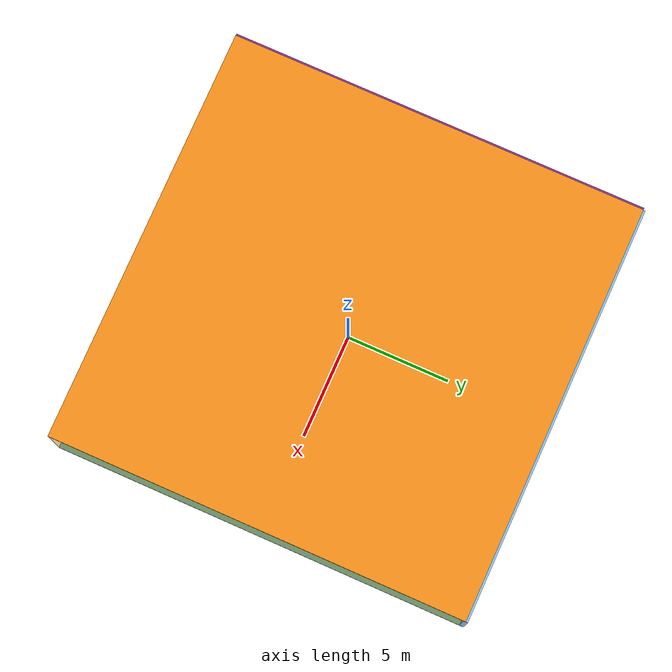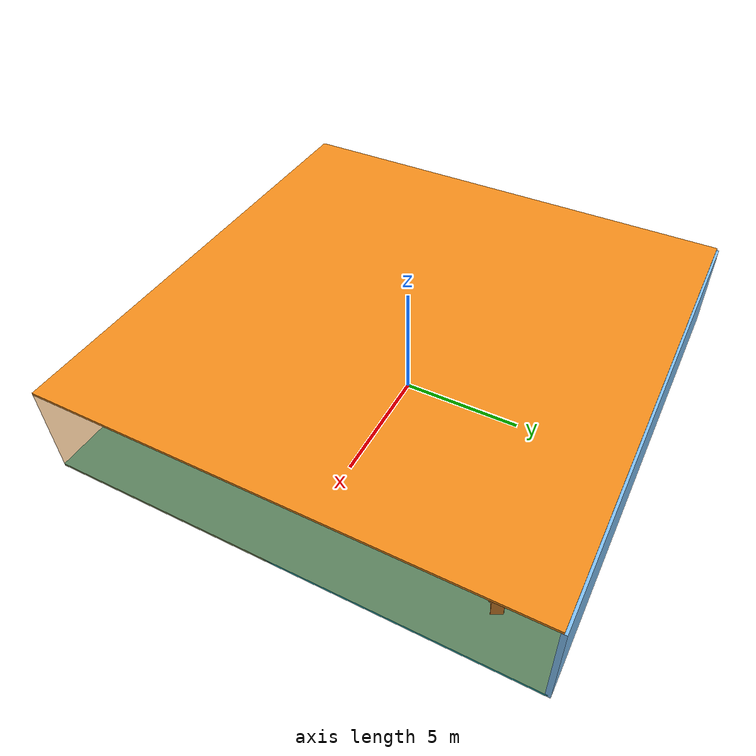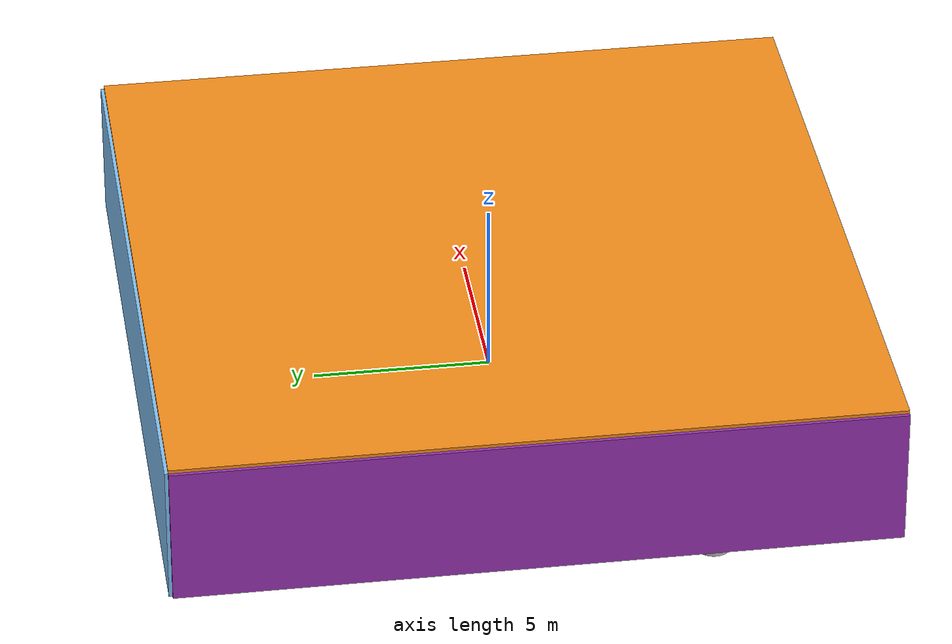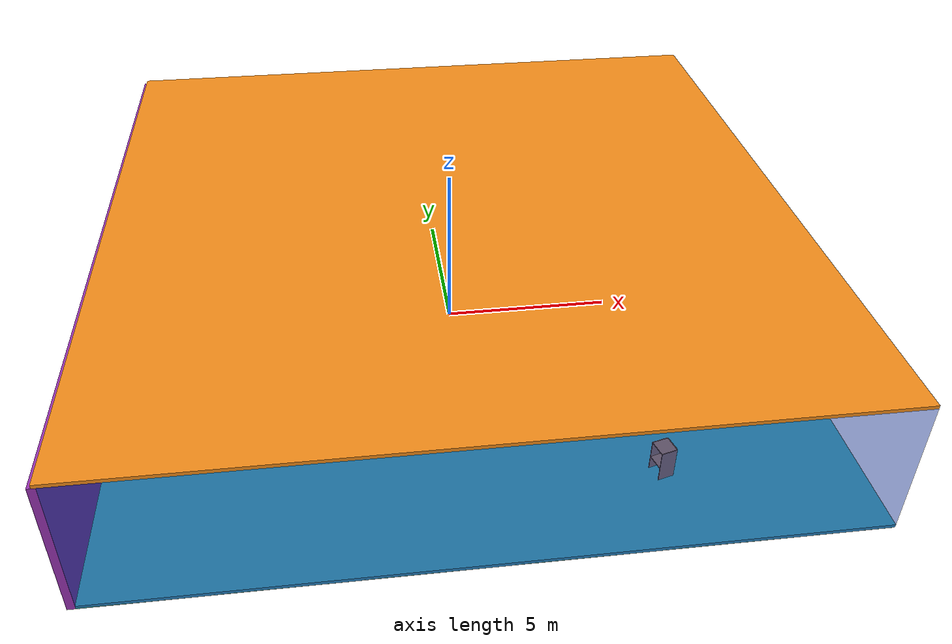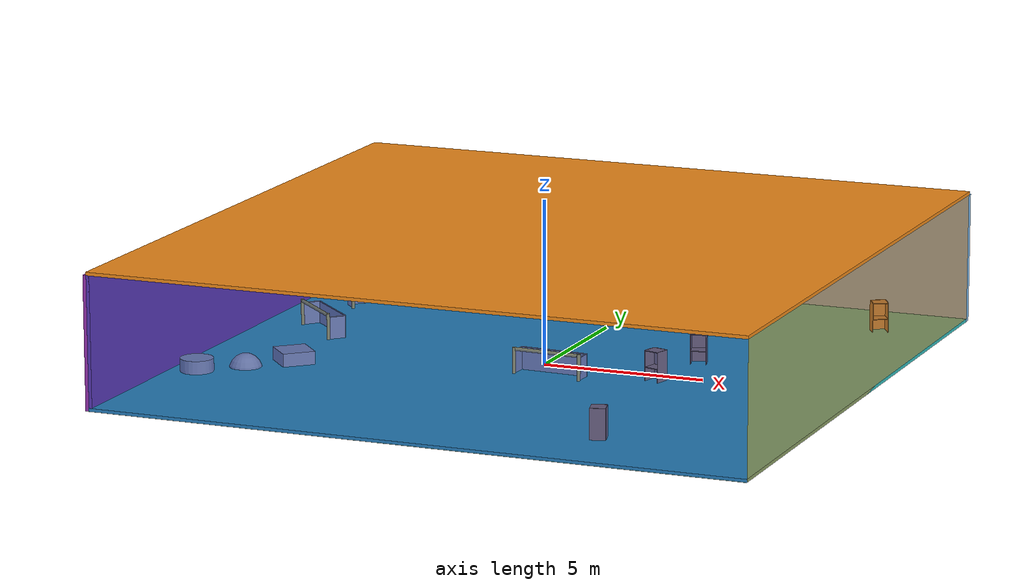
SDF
<sdf version="1.4">
 <world name="default">
  <physics type="ode">
   <max_step_size>0.001</max_step_size>
   <real_time_factor>1</real_time_factor>
   <real_time_update_rate>1000</real_time_update_rate>
   <gravity>0 0 -9.8</gravity>
  </physics>
  <scene><ambient>0.4 0.4 0.4 1</ambient><background>0.7 0.7 0.7 1</background><shadows>1</shadows></scene>
  <model name="Surrounding">
   <static>1</static>
   <link name="Ceiling">
    <collision name="Ceiling_Collision"><geometry><box><size>20 20 0.1</size></box></geometry></collision>
    <visual name="Ceiling_Visual">
     <geometry><box><size>20 20 0.1</size></box></geometry>
     <material>
      <script><uri>file://media/materials/scripts/gazebo.material</uri><name>Gazebo/Orange</name></script>
     </material>
    </visual>
    <pose>0 0 4.05 0 0 0</pose>
   </link>
   <link name="Wall_South">
    <collision name="Wall_South_Collision">
     <geometry><box><size>20 0 4</size></box></geometry>
     <pose>0 0 2 0 -0 0</pose>
    </collision>
    <visual name="Wall_South_Visual">
     <pose>0 0 2 0 -0 0</pose>
     <geometry><box><size>20 0 4</size></box></geometry>
     <material>
      <script><uri>file://media/materials/scripts/gazebo.material</uri><name>Gazebo/BlueTransparent</name></script>
     </material>
    </visual>
    <velocity_decay><linear>0</linear><angular>0</angular></velocity_decay>
    <pose>0 -10 0 0 -0 0</pose>
   </link>
   <link name="Wall_East">
    <collision name="Wall_21_Collision">
     <geometry><box><size>20 0 4</size></box></geometry>
     <pose>0 0 2 0 -0 0</pose>
    </collision>
    <visual name="Wall_21_Visual">
     <pose>0 0 2 0 -0 0</pose>
     <geometry><box><size>20 0 4</size></box></geometry>
     <material>
      <script>
       <uri>file://media/materials/scripts/gazebo.material</uri>
       <name>Gazebo/OrangeTransparent</name>
      </script>
     </material>
    </visual>
    <velocity_decay><linear>0</linear><angular>0</angular></velocity_decay>
    <pose>10 0 0 0 -0 1.5708</pose>
   </link>
   <link name="Wall_North">
    <collision name="Wall_22_Collision">
     <geometry><box><size>20 0.2 4</size></box></geometry>
     <pose>0 0 2 0 -0 0</pose>
    </collision>
    <visual name="Wall_22_Visual">
     <pose>0 0 2 0 -0 0</pose>
     <geometry><box><size>20 0.2 4</size></box></geometry>
     <material>
      <script><uri>file://media/materials/scripts/gazebo.material</uri><name>Gazebo/SkyBlue</name></script>
     </material>
    </visual>
    <velocity_decay><linear>0</linear><angular>0</angular></velocity_decay>
    <pose>0 10 0 0 -0 0</pose>
   </link>
   <link name="Wall_West">
    <collision name="Wall_23_Collision">
     <geometry><box><size>20 0.2 4</size></box></geometry>
     <pose>0 0 2 0 -0 0</pose>
    </collision>
    <visual name="Wall_23_Visual">
     <pose>0 0 2 0 -0 0</pose>
     <geometry><box><size>20 0.2 4</size></box></geometry>
     <material>
      <script><uri>file://media/materials/scripts/gazebo.material</uri><name>Gazebo/PurpleGlow</name></script>
     </material>
    </visual>
    <velocity_decay><linear>0</linear><angular>0</angular></velocity_decay>
    <pose>-10 0 0 0 0 -1.5708</pose>
   </link>
   <link name="Ground_link">
    <collision name="collision">
     <pose>0 0 .05 0 -0 0</pose>
     <geometry><box><size>20 20 0.1</size></box></geometry>
    </collision>
    <visual name="visual">
     <pose>0 0 .05 0 -0 0</pose>
     <geometry><box><size>20 20 0.1</size></box></geometry>
     <material>
      <script><uri>file://media/materials/scripts/gazebo.material</uri><name>Gazebo/Turquoise</name></script>
     </material>
    </visual>
   </link>
   <static>1</static>
  </model>
  <spherical_coordinates>
   <surface_model>EARTH_WGS84</surface_model>
   <latitude_deg>0</latitude_deg>
   <longitude_deg>0</longitude_deg>
   <elevation>0</elevation>
   <heading_deg>0</heading_deg>
  </spherical_coordinates>
  <light name="lightball_0" type="diffuse">
   <diffuse>0.8 0.8 0.8 1</diffuse>
   <specular>0.2 0.2 0.2 1</specular>
   <attenuation>
    <range>100</range>
    <constant>0.7</constant>
    <linear>0.01</linear>
    <quadratic>0.001</quadratic>
   </attenuation>
   <direction>-0.5 0.1 -0.9</direction>
   <pose>0.59297669672 -6.55424214673 3.12854594563 0 0 0</pose>
  </light>
  <light name="lightball_1" type="diffuse">
   <diffuse>0.8 0.8 0.8 1</diffuse>
   <specular>0.2 0.2 0.2 1</specular>
   <attenuation>
    <range>100</range>
    <constant>0.7</constant>
    <linear>0.01</linear>
    <quadratic>0.001</quadratic>
   </attenuation>
   <direction>-0.5 0.1 -0.9</direction>
   <pose>6.57637825441 2.26639070705 1.68032225491 0 0 0</pose>
  </light>
  <light name="lightball_2" type="diffuse">
   <diffuse>0.8 0.8 0.8 1</diffuse>
   <specular>0.2 0.2 0.2 1</specular>
   <attenuation>
    <range>100</range>
    <constant>0.7</constant>
    <linear>0.01</linear>
    <quadratic>0.001</quadratic>
   </attenuation>
   <direction>-0.5 0.1 -0.9</direction>
   <pose>-1.21870035257 1.83995364707 2.04644697083 0 0 0</pose>
  </light>
  <light name="lightball_3" type="diffuse">
   <diffuse>0.8 0.8 0.8 1</diffuse>
   <specular>0.2 0.2 0.2 1</specular>
   <attenuation>
    <range>100</range>
    <constant>0.7</constant>
    <linear>0.01</linear>
    <quadratic>0.001</quadratic>
   </attenuation>
   <direction>-0.5 0.1 -0.9</direction>
   <pose>-4.56425550043 3.8916878239 2.36060377463 0 0 0</pose>
  </light>
  <light name="lightball_4" type="diffuse">
   <diffuse>0.8 0.8 0.8 1</diffuse>
   <specular>0.2 0.2 0.2 1</specular>
   <attenuation>
    <range>100</range>
    <constant>0.7</constant>
    <linear>0.01</linear>
    <quadratic>0.001</quadratic>
   </attenuation>
   <direction>-0.5 0.1 -0.9</direction>
   <pose>5.65926733959 3.72091732691 2.05454300722 0 0 0</pose>
  </light>
  <light name="lightball_5" type="diffuse">
   <diffuse>0.8 0.8 0.8 1</diffuse>
   <specular>0.2 0.2 0.2 1</specular>
   <attenuation>
    <range>100</range>
    <constant>0.7</constant>
    <linear>0.01</linear>
    <quadratic>0.001</quadratic>
   </attenuation>
   <direction>-0.5 0.1 -0.9</direction>
   <pose>8.70367250144 -3.57854843438 2.04870073328 0 0 0</pose>
  </light>
  <light name="lightball_6" type="diffuse">
   <diffuse>0.8 0.8 0.8 1</diffuse>
   <specular>0.2 0.2 0.2 1</specular>
   <attenuation>
    <range>100</range>
    <constant>0.7</constant>
    <linear>0.01</linear>
    <quadratic>0.001</quadratic>
   </attenuation>
   <direction>-0.5 0.1 -0.9</direction>
   <pose>4.5590538757 -7.27926511243 1.38400530344 0 0 0</pose>
  </light>
  <light name="lightball_7" type="diffuse">
   <diffuse>0.8 0.8 0.8 1</diffuse>
   <specular>0.2 0.2 0.2 1</specular>
   <attenuation>
    <range>100</range>
    <constant>0.7</constant>
    <linear>0.01</linear>
    <quadratic>0.001</quadratic>
   </attenuation>
   <direction>-0.5 0.1 -0.9</direction>
   <pose>-8.53488096117 7.48170592948 3.16274159851 0 0 0</pose>
  </light>
  <light name="lightball_8" type="diffuse">
   <diffuse>0.8 0.8 0.8 1</diffuse>
   <specular>0.2 0.2 0.2 1</specular>
   <attenuation>
    <range>100</range>
    <constant>0.7</constant>
    <linear>0.01</linear>
    <quadratic>0.001</quadratic>
   </attenuation>
   <direction>-0.5 0.1 -0.9</direction>
   <pose>7.3495875702 -1.03958036669 3.36662632179 0 0 0</pose>
  </light>
  <light name="lightball_9" type="diffuse">
   <diffuse>0.8 0.8 0.8 1</diffuse>
   <specular>0.2 0.2 0.2 1</specular>
   <attenuation>
    <range>100</range>
    <constant>0.7</constant>
    <linear>0.01</linear>
    <quadratic>0.001</quadratic>
   </attenuation>
   <direction>-0.5 0.1 -0.9</direction>
   <pose>1.33405554732 -6.25354098939 2.49001698796 0 0 0</pose>
  </light>
  <light name="lightball_10" type="diffuse">
   <diffuse>0.8 0.8 0.8 1</diffuse>
   <specular>0.2 0.2 0.2 1</specular>
   <attenuation>
    <range>100</range>
    <constant>0.7</constant>
    <linear>0.01</linear>
    <quadratic>0.001</quadratic>
   </attenuation>
   <direction>-0.5 0.1 -0.9</direction>
   <pose>9.81882736994 1.31487088537 3.89896253152 0 0 0</pose>
  </light>
  <include>
   <uri>model://textured_shapes</uri>
   <pose>-7.97191183114 -3.88620928787 0 0 0 2.31868579736</pose>
  </include>
  <include>
   <uri>model://robocup_3Dsim_goal</uri>
   <pose>-7.8687361849 0.787046053413 0 0 0 0.813984880642</pose>
  </include>
  <include>
   <uri>model://robocup_3Dsim_goal</uri>
   <pose>-7.29408707245 4.72598615485 0 0 0 2.30724836453</pose>
  </include>
  <include>
   <uri>model://robocup_3Dsim_goal</uri>
   <pose>0.750420741173 -1.71952240817 0 0 0 1.51865632543</pose>
  </include>
  <include><uri>model://cabinet</uri><pose>4.70076481658 -7.54275489015 0 0 0 0.258251633722</pose></include>
  <include><uri>model://cabinet</uri><pose>3.86804065654 -0.874455697848 0 0 0 1.27460015303</pose></include>
  <include><uri>model://cabinet</uri><pose>4.30491274156 1.56568845003 0 0 0 1.83867821134</pose></include>
  <include><uri>model://cabinet</uri><pose>7.98914181243 7.41278148049 0 0 0 2.08307437728</pose></include>
 </world>
</sdf>

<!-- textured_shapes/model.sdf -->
<sdf version="1.6">
  <model name="textured_shapes">
    <pose>0 0 0.5 0 0 0</pose>
    <link name="box">
      <pose>0 -1.5 0 0 0 0</pose>
      <collision name="collision">
        <geometry>
          <box>
            <size>1 1 1</size>
          </box>
        </geometry>
      </collision>
      <visual name="visual">
        <geometry>
          <box>
            <size>1 1 1</size>
          </box>
        </geometry>
        <material>
          <script>
            <uri>model://../model_source/models/textured_shapes/materials/scripts</uri>
            <uri>model://../model_source/models/textured_shapes/materials/textures</uri>
            <name>TexturedShape/Squares</name>
          </script>
        </material>
      </visual>
    </link>
    <link name="sphere">
      <collision name="collision">
        <geometry>
          <sphere>
            <radius>0.5</radius>
          </sphere>
        </geometry>
      </collision>
      <visual name="visual">
        <geometry>
          <sphere>
            <radius>0.5</radius>
          </sphere>
        </geometry>
        <material>
          <script>
            <uri>model://../model_source/models/textured_shapes/materials/scripts</uri>
            <uri>model://../model_source/models/textured_shapes/materials/textures</uri>
            <name>TexturedShape/Squares</name>
          </script>
        </material>
      </visual>
    </link>
    <link name="cylinder">
      <pose>0 1.5 0 0 0 0</pose>
      <collision name="collision">
        <geometry>
          <cylinder>
            <radius>0.5</radius>
            <length>1</length>
          </cylinder>
        </geometry>
      </collision>
      <visual name="visual">
        <geometry>
          <cylinder>
            <radius>0.5</radius>
            <length>1</length>
          </cylinder>
        </geometry>
        <material>
          <script>
            <uri>model://../model_source/models/textured_shapes/materials/scripts</uri>
            <uri>model://../model_source/models/textured_shapes/materials/textures</uri>
            <name>TexturedShape/Squares</name>
          </script>
        </material>
      </visual>
    </link>
  </model>
</sdf>

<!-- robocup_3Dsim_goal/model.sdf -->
<sdf version="1.5">
  <model name="robocup_3d_goal">
    <static>true</static>
    <link name="left_post">
      <pose>0 1.05 0.45 0 0 0</pose>
      <collision name="collision">
        <geometry>
          <cylinder>
            <radius>0.05</radius>
            <length>0.9</length>
          </cylinder>
        </geometry>
      </collision>
      <visual name="visual">
        <geometry>
          <cylinder>
            <radius>0.05</radius>
            <length>0.9</length>
          </cylinder>
        </geometry>
        <material>
          <script>
            <uri>file://media/materials/scripts/gazebo.material</uri>
            <name>Gazebo/ZincYellow</name>
          </script>
        </material>
      </visual>
    </link>
    <link name="left_support_horiz_lower">
      <pose>0.30 1.05 0.01 0 0 0</pose>
      <collision name="collision">
        <geometry>
          <box>
            <size>0.50 0.02 0.02</size>
          </box>
        </geometry>
      </collision>
      <visual name="visual">
        <geometry>
          <box>
            <size>0.50 0.02 0.02</size>
          </box>
        </geometry>
        <material>
          <script>
            <uri>file://media/materials/scripts/gazebo.material</uri>
            <name>Gazebo/White</name>
          </script>
        </material>
      </visual>
    </link>
    <link name="left_support_horiz_upper">
      <pose>0.30 1.05 0.79 0 0 0</pose>
      <collision name="collision">
        <geometry>
          <box>
            <size>0.50 0.02 0.02</size>
          </box>
        </geometry>
      </collision>
      <visual name="visual">
        <geometry>
          <box>
            <size>0.50 0.02 0.02</size>
          </box>
        </geometry>
        <material>
          <script>
            <uri>file://media/materials/scripts/gazebo.material</uri>
            <name>Gazebo/White</name>
          </script>
        </material>
      </visual>
    </link>
    <link name="left_support_vertical">
      <pose>0.56 1.05 0.4 0 1.5708 0</pose>
      <collision name="collision">
        <geometry>
          <box>
            <size>0.80 0.02 0.02</size>
          </box>
        </geometry>
      </collision>
      <visual name="visual">
        <geometry>
          <box>
            <size>0.80 0.02 0.02</size>
          </box>
        </geometry>
        <material>
          <script>
            <uri>file://media/materials/scripts/gazebo.material</uri>
            <name>Gazebo/White</name>
          </script>
        </material>
      </visual>
    </link>
    <link name="right_support_horiz_lower">
      <pose>0.30 -1.05 0.01 0 0 0</pose>
      <collision name="collision">
        <geometry>
          <box>
            <size>0.50 0.02 0.02</size>
          </box>
        </geometry>
      </collision>
      <visual name="visual">
        <geometry>
          <box>
            <size>0.50 0.02 0.02</size>
          </box>
        </geometry>
        <material>
          <script>
            <uri>file://media/materials/scripts/gazebo.material</uri>
            <name>Gazebo/White</name>
          </script>
        </material>
      </visual>
    </link>
    <link name="right_support_horiz_upper">
      <pose>0.30 -1.05 0.79 0 0 0</pose>
      <collision name="collision">
        <geometry>
          <box>
            <size>0.50 0.02 0.02</size>
          </box>
        </geometry>
      </collision>
      <visual name="visual">
        <geometry>
          <box>
            <size>0.50 0.02 0.02</size>
          </box>
        </geometry>
        <material>
          <script>
            <uri>file://media/materials/scripts/gazebo.material</uri>
            <name>Gazebo/White</name>
          </script>
        </material>
      </visual>
    </link>
    <link name="right_support_vertical">
      <pose>0.56 -1.05 0.4 0 1.5708 0</pose>
      <collision name="collision">
        <geometry>
          <box>
            <size>0.80 0.02 0.02</size>
          </box>
        </geometry>
      </collision>
      <visual name="visual">
        <geometry>
          <box>
            <size>0.80 0.02 0.02</size>
          </box>
        </geometry>
        <material>
          <script>
            <uri>file://media/materials/scripts/gazebo.material</uri>
            <name>Gazebo/White</name>
          </script>
        </material>
      </visual>
    </link>
    <link name="center_support_horiz_lower">
      <pose>0.56 0 0.01 0 1.5708 0</pose>
      <collision name="collision">
        <geometry>
          <box>
            <size>0.02 2.08 0.02</size>
          </box>
        </geometry>
      </collision>
      <visual name="visual">
        <geometry>
          <box>
            <size>0.02 2.08 0.02</size>
          </box>
        </geometry>
        <material>
          <script>
            <uri>file://media/materials/scripts/gazebo.material</uri>
            <name>Gazebo/White</name>
          </script>
        </material>
      </visual>
    </link>
    <link name="center_support_horiz_upper">
      <pose>0.56 0 0.79 0 1.5708 0</pose>
      <collision name="collision">
        <geometry>
          <box>
            <size>0.02 2.08 0.02</size>
          </box>
        </geometry>
      </collision>
      <visual name="visual">
        <geometry>
          <box>
            <size>0.02 2.08 0.02</size>
          </box>
        </geometry>
        <material>
          <script>
            <uri>file://media/materials/scripts/gazebo.material</uri>
            <name>Gazebo/White</name>
          </script>
        </material>
      </visual>
    </link>
    <link name="right_post">
      <pose>0 -1.05 0.45 0 0 0</pose>
      <collision name="collision">
        <geometry>
          <cylinder>
            <radius>0.05</radius>
            <length>0.9</length>
          </cylinder>
        </geometry>
      </collision>
      <visual name="visual">
        <geometry>
          <cylinder>
            <radius>0.05</radius>
            <length>0.9</length>
          </cylinder>
        </geometry>
        <material>
          <script>
            <uri>file://media/materials/scripts/gazebo.material</uri>
            <name>Gazebo/ZincYellow</name>
          </script>
        </material>
      </visual>
    </link>
    <link name="crossbar">
      <pose>0 0 0.85 1.57 1.57 0</pose>
      <collision name="collision">
        <geometry>
          <cylinder>
            <radius>0.05</radius>
            <length>2.0</length>
          </cylinder>
        </geometry>
      </collision>
      <visual name="visual">
        <geometry>
          <cylinder>
            <radius>0.05</radius>
            <length>2.0</length>
          </cylinder>
        </geometry>
        <material>
          <script>
            <uri>file://media/materials/scripts/gazebo.material</uri>
            <name>Gazebo/ZincYellow</name>
          </script>
        </material>
      </visual>
    </link>
    <link name="center_net">
      <pose>0.56 0 0.40 0 0 0</pose>
      <collision name="collision">
        <geometry>
          <box>
            <size>0.01 2.1 0.80</size>
          </box>
        </geometry>
      </collision>
      <visual name="visual">
        <geometry>
          <box>
            <size>0.01 2.1 0.80</size>
          </box>
        </geometry>
        <material>
          <script>
            <uri>model://../model_source/models/robocup09_spl_field/materials/scripts/</uri>
            <uri>model://../model_source/models/robocup09_spl_field/materials/textures/</uri>
            <name>RoboCup/Net</name>
          </script>
        </material>
      </visual>
    </link>
    <link name="left_net">
      <pose>0.30 1.05 0.40 0 0 0</pose>
      <collision name="collision">
        <geometry>
          <box>
            <size>0.50 0.01 0.76</size>
          </box>
        </geometry>
      </collision>
      <visual name="visual">
        <geometry>
          <box>
            <size>0.50 0.01 0.76</size>
          </box>
        </geometry>
        <material>
          <script>
            <uri>model://../model_source/models/robocup09_spl_field/materials/scripts/</uri>
            <uri>model://../model_source/models/robocup09_spl_field/materials/textures/</uri>
            <name>RoboCup/Net</name>
          </script>
        </material>
      </visual>
    </link>
    <link name="right_net">
      <pose>0.30 -1.05 0.40 0 0 0</pose>
      <collision name="collision">
        <geometry>
          <box>
            <size>0.50 0.01 0.76</size>
          </box>
        </geometry>
      </collision>
      <visual name="visual">
        <geometry>
          <box>
            <size>0.50 0.01 0.76</size>
          </box>
        </geometry>
        <material>
          <script>
            <uri>model://../model_source/models/robocup09_spl_field/materials/scripts/</uri>
            <uri>model://../model_source/models/robocup09_spl_field/materials/textures/</uri>
            <name>RoboCup/Net</name>
          </script>
        </material>
      </visual>
    </link>
  </model>
</sdf>

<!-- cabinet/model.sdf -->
<sdf version="1.5">
  <model name="cabinet">
    <static>true</static>
    <link name="cabinet_bottom_plate">
      <inertial>
        <pose>0 0 -1 0 0 0</pose>
        <inertia>
          <ixx>2.050000</ixx>
          <ixy>0</ixy>
          <ixz>0</ixz>
          <iyy>2.050000</iyy>
          <iyz>0</iyz>
          <izz>2.050000</izz>
        </inertia>
        <mass>25.000000</mass>
      </inertial>
      <collision name="cabinet_bottom_plate_geom">
        <pose>0 0 0.010000 0 0 0</pose>
        <geometry>
          <box>
            <size>0.450000 0.450000 0.020000</size>
          </box>
        </geometry>
      </collision>
      <visual name="cabinet_bottom_plate_geom_visual">
        <pose>0 0 0.010000 0 0 0</pose>
        <geometry>
          <box>
            <size>0.450000 0.450000 0.020000</size>
          </box>
        </geometry>
        <material>
          <script>
            <uri>model://media/materials/scripts/gazebo.material</uri>
            <name>Gazebo/Wood</name>
          </script>
        </material>
      </visual>
      <collision name="cabinet_bottom_plate_geom_cabinet_back_plate">
        <pose>0.235000 0 0.510000 0 0 0</pose>
        <geometry>
          <box>
            <size>0.020000 0.450000 1.020000</size>
          </box>
        </geometry>
      </collision>
      <visual name="cabinet_bottom_plate_geom_cabinet_back_plate_visual">
        <pose>0.235000 0 0.510000 0 0 0</pose>
        <geometry>
          <box>
            <size>0.020000 0.450000 1.020000</size>
          </box>
        </geometry>
        <material>
          <script>
            <uri>model://media/materials/scripts/gazebo.material</uri>
            <name>Gazebo/Wood</name>
          </script>
        </material>
      </visual>
      <collision name="cabinet_bottom_plate_geom_cabinet_left_plate">
        <pose>0 0.235000 0.510000 0 0 0</pose>
        <geometry>
          <box>
            <size>0.450000 0.020000 1.020000</size>
          </box>
        </geometry>
      </collision>
      <visual name="cabinet_bottom_plate_geom_cabinet_left_plate_visual">
        <pose>0 0.235000 0.510000 0 0 0</pose>
        <geometry>
          <box>
            <size>0.450000 0.020000 1.020000</size>
          </box>
        </geometry>
        <material>
          <script>
            <uri>model://media/materials/scripts/gazebo.material</uri>
            <name>Gazebo/Wood</name>
          </script>
        </material>
      </visual>
      <collision name="cabinet_bottom_plate_geom_cabinet_middle_plate">
        <pose>0 0 0.510000 0 0 0</pose>
        <geometry>
          <box>
            <size>0.450000 0.450000 0.020000</size>
          </box>
        </geometry>
      </collision>
      <visual name="cabinet_bottom_plate_geom_cabinet_middle_plate_visual">
        <pose>0 0 0.510000 0 0 0</pose>
        <geometry>
          <box>
            <size>0.450000 0.450000 0.020000</size>
          </box>
        </geometry>
        <material>
          <script>
            <uri>model://media/materials/scripts/gazebo.material</uri>
            <name>Gazebo/Wood</name>
          </script>
        </material>
      </visual>
      <collision name="cabinet_bottom_plate_geom_cabinet_right_plate">
        <pose>0 -0.235000 0.510000 0 0 0</pose>
        <geometry>
          <box>
            <size>0.450000 0.020000 1.020000</size>
          </box>
        </geometry>
      </collision>
      <visual name="cabinet_bottom_plate_geom_cabinet_right_plate_visual">
        <pose>0 -0.235000 0.510000 0 0 0</pose>
        <geometry>
          <box>
            <size>0.450000 0.020000 1.020000</size>
          </box>
        </geometry>
        <material>
          <script>
            <uri>model://media/materials/scripts/gazebo.material</uri>
            <name>Gazebo/Wood</name>
          </script>
        </material>
      </visual>
      <collision name="cabinet_bottom_plate_geom_cabinet_top_plate">
        <pose>0 0 1.010000 0 0 0</pose>
        <geometry>
          <box>
            <size>0.450000 0.450000 0.020000</size>
          </box>
        </geometry>
      </collision>
      <visual name="cabinet_bottom_plate_geom_cabinet_top_plate_visual">
        <pose>0 0 1.010000 0 0 0</pose>
        <geometry>
          <box>
            <size>0.450000 0.450000 0.020000</size>
          </box>
        </geometry>
        <material>
          <script>
            <uri>model://media/materials/scripts/gazebo.material</uri>
            <name>Gazebo/Wood</name>
          </script>
        </material>
      </visual>
    </link>
  </model>
</sdf>
